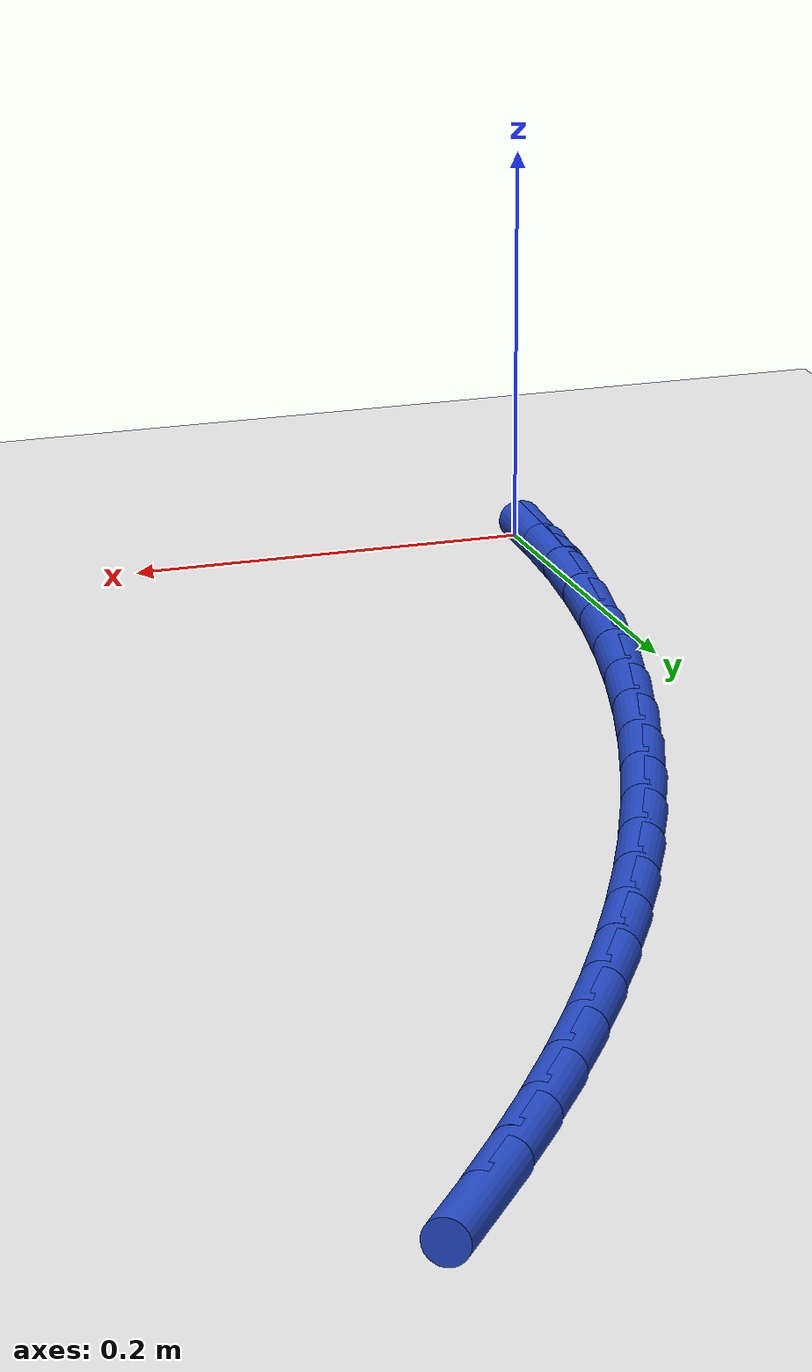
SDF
<sdf version="1.6">
 <world name="default">
  <model name="ground_plane">
   <static>1</static>
   <link name="link">
    <collision name="collision">
     <geometry><plane><normal>0 0 1</normal><size>100 100</size></plane></geometry>
     <surface><friction><ode><mu>100</mu><mu2>50</mu2></ode></friction></surface>
    </collision>
    <visual name="visual">
     <cast_shadows>0</cast_shadows>
     <geometry><plane><normal>0 0 1</normal><size>100 100</size></plane></geometry>
     <material>
      <script><uri>file://media/materials/scripts/gazebo.material</uri><name>Gazebo/WhiteGlow</name></script>
     </material>
    </visual>
   </link>
  </model>
  <model name="line">
   <link name="link_1">
    <pose>0.0018773794262160705 0.0441996178607598 0.01 0 1.57 1.4841949896388122</pose>
    <collision name="collision">
     <geometry><cylinder><radius>0.01</radius><length>0.08</length></cylinder></geometry>
    </collision>
    <visual name="visual">
     <material>
      <script><name>Gazebo/Blue</name><uri>file://media/materials/scripts/gazebo.material</uri></script>
     </material>
     <geometry><cylinder><radius>0.01</radius><length>0.08</length></cylinder></geometry>
    </visual>
   </link>
   <link name="link_2">
    <pose>0.00569221182953699 0.08813994188575232 0.01 0 1.57 1.442375402503813</pose>
    <collision name="collision">
     <geometry><cylinder><radius>0.01</radius><length>0.08</length></cylinder></geometry>
    </collision>
    <visual name="visual">
     <material>
      <script><name>Gazebo/Blue</name><uri>file://media/materials/scripts/gazebo.material</uri></script>
     </material>
     <geometry><cylinder><radius>0.01</radius><length>0.08</length></cylinder></geometry>
    </visual>
   </link>
   <link name="link_3">
    <pose>0.01132656917750486 0.13177262444632545 0.01 0 1.57 1.402879705712286</pose>
    <collision name="collision">
     <geometry><cylinder><radius>0.01</radius><length>0.08</length></cylinder></geometry>
    </collision>
    <visual name="visual">
     <material>
      <script><name>Gazebo/Blue</name><uri>file://media/materials/scripts/gazebo.material</uri></script>
     </material>
     <geometry><cylinder><radius>0.01</radius><length>0.08</length></cylinder></geometry>
    </visual>
   </link>
   <link name="link_4">
    <pose>0.01866252343766173 0.175049317913827 0.01 0 1.57 1.3656718448897593</pose>
    <collision name="collision">
     <geometry><cylinder><radius>0.01</radius><length>0.08</length></cylinder></geometry>
    </collision>
    <visual name="visual">
     <material>
      <script><name>Gazebo/Blue</name><uri>file://media/materials/scripts/gazebo.material</uri></script>
     </material>
     <geometry><cylinder><radius>0.01</radius><length>0.08</length></cylinder></geometry>
    </visual>
   </link>
   <link name="link_5">
    <pose>0.027582146577549666 0.21792167465960488 0.01 0 1.57 1.330694869672909</pose>
    <collision name="collision">
     <geometry><cylinder><radius>0.01</radius><length>0.08</length></cylinder></geometry>
    </collision>
    <visual name="visual">
     <material>
      <script><name>Gazebo/Blue</name><uri>file://media/materials/scripts/gazebo.material</uri></script>
     </material>
     <geometry><cylinder><radius>0.01</radius><length>0.08</length></cylinder></geometry>
    </visual>
   </link>
   <link name="link_6">
    <pose>0.03796751056471074 0.26034134705500694 0.01 0 1.57 1.2978770520964877</pose>
    <collision name="collision">
     <geometry><cylinder><radius>0.01</radius><length>0.08</length></cylinder></geometry>
    </collision>
    <visual name="visual">
     <material>
      <script><name>Gazebo/Blue</name><uri>file://media/materials/scripts/gazebo.material</uri></script>
     </material>
     <geometry><cylinder><radius>0.01</radius><length>0.08</length></cylinder></geometry>
    </visual>
   </link>
   <link name="link_7">
    <pose>0.049700687366686994 0.3022599874713811 0.01 0 1.57 1.2671371870385222</pose>
    <collision name="collision">
     <geometry><cylinder><radius>0.01</radius><length>0.08</length></cylinder></geometry>
    </collision>
    <visual name="visual">
     <material>
      <script><name>Gazebo/Blue</name><uri>file://media/materials/scripts/gazebo.material</uri></script>
     </material>
     <geometry><cylinder><radius>0.01</radius><length>0.08</length></cylinder></geometry>
    </visual>
   </link>
   <link name="link_8">
    <pose>0.06266374895102049 0.34362924828007513 0.01 0 1.57 1.238389022745369</pose>
    <collision name="collision">
     <geometry><cylinder><radius>0.01</radius><length>0.08</length></cylinder></geometry>
    </collision>
    <visual name="visual">
     <material>
      <script><name>Gazebo/Blue</name><uri>file://media/materials/scripts/gazebo.material</uri></script>
     </material>
     <geometry><cylinder><radius>0.01</radius><length>0.08</length></cylinder></geometry>
    </visual>
   </link>
   <link name="link_9">
    <pose>0.07673876898450409 0.3844007832674508 0.01 0 1.57 1.2111672025673526</pose>
    <collision name="collision">
     <geometry><cylinder><radius>0.01</radius><length>0.08</length></cylinder></geometry>
    </collision>
    <visual name="visual">
     <material>
      <script><name>Gazebo/Blue</name><uri>file://media/materials/scripts/gazebo.material</uri></script>
     </material>
     <geometry><cylinder><radius>0.01</radius><length>0.08</length></cylinder></geometry>
    </visual>
   </link>
   <link name="link_10">
    <pose>0.09183300477948912 0.4245472173480202 0.01 0 1.57 1.1841548187913944</pose>
    <collision name="collision">
     <geometry><cylinder><radius>0.01</radius><length>0.08</length></cylinder></geometry>
    </collision>
    <visual name="visual">
     <material>
      <script><name>Gazebo/Blue</name><uri>file://media/materials/scripts/gazebo.material</uri></script>
     </material>
     <geometry><cylinder><radius>0.01</radius><length>0.08</length></cylinder></geometry>
    </visual>
   </link>
   <link name="link_11">
    <pose>0.1079424291087033 0.4641150512889467 0.01 0 1.57 1.157207312297957</pose>
    <collision name="collision">
     <geometry><cylinder><radius>0.01</radius><length>0.08</length></cylinder></geometry>
    </collision>
    <visual name="visual">
     <material>
      <script><name>Gazebo/Blue</name><uri>file://media/materials/scripts/gazebo.material</uri></script>
     </material>
     <geometry><cylinder><radius>0.01</radius><length>0.08</length></cylinder></geometry>
    </visual>
   </link>
   <link name="link_12">
    <pose>0.12508253987730664 0.5031670449829216 0.01 0 1.57 1.1304850856862338</pose>
    <collision name="collision">
     <geometry><cylinder><radius>0.01</radius><length>0.08</length></cylinder></geometry>
    </collision>
    <visual name="visual">
     <material>
      <script><name>Gazebo/Blue</name><uri>file://media/materials/scripts/gazebo.material</uri></script>
     </material>
     <geometry><cylinder><radius>0.01</radius><length>0.08</length></cylinder></geometry>
    </visual>
   </link>
   <link name="link_13">
    <pose>0.14326883499045895 0.541765958322636 0.01 0 1.57 1.104144897239934</pose>
    <collision name="collision">
     <geometry><cylinder><radius>0.01</radius><length>0.08</length></cylinder></geometry>
    </collision>
    <visual name="visual">
     <material>
      <script><name>Gazebo/Blue</name><uri>file://media/materials/scripts/gazebo.material</uri></script>
     </material>
     <geometry><cylinder><radius>0.01</radius><length>0.08</length></cylinder></geometry>
    </visual>
   </link>
   <link name="link_14">
    <pose>0.16251681235332044 0.5799745512007817 0.01 0 1.57 1.0783361836781882</pose>
    <collision name="collision">
     <geometry><cylinder><radius>0.01</radius><length>0.08</length></cylinder></geometry>
    </collision>
    <visual name="visual">
     <material>
      <script><name>Gazebo/Blue</name><uri>file://media/materials/scripts/gazebo.material</uri></script>
     </material>
     <geometry><cylinder><radius>0.01</radius><length>0.08</length></cylinder></geometry>
    </visual>
   </link>
   <link name="link_15">
    <pose>0.18284196987105086 0.6178555835100495 0.01 0 1.57 1.0531977779536694</pose>
    <collision name="collision">
     <geometry><cylinder><radius>0.01</radius><length>0.08</length></cylinder></geometry>
    </collision>
    <visual name="visual">
     <material>
      <script><name>Gazebo/Blue</name><uri>file://media/materials/scripts/gazebo.material</uri></script>
     </material>
     <geometry><cylinder><radius>0.01</radius><length>0.08</length></cylinder></geometry>
    </visual>
   </link>
   <link name="link_16">
    <pose>0.2042598054488104 0.6554718151431315 0.01 0 1.57 1.0288551834632929</pose>
    <collision name="collision">
     <geometry><cylinder><radius>0.01</radius><length>0.08</length></cylinder></geometry>
    </collision>
    <visual name="visual">
     <material>
      <script><name>Gazebo/Blue</name><uri>file://media/materials/scripts/gazebo.material</uri></script>
     </material>
     <geometry><cylinder><radius>0.01</radius><length>0.08</length></cylinder></geometry>
    </visual>
   </link>
   <link name="link_17">
    <pose>0.22678581699175887 0.6928860059927187 0.01 0 1.57 1.005418512661279</pose>
    <collision name="collision">
     <geometry><cylinder><radius>0.01</radius><length>0.08</length></cylinder></geometry>
    </collision>
    <visual name="visual">
     <material>
      <script><name>Gazebo/Blue</name><uri>file://media/materials/scripts/gazebo.material</uri></script>
     </material>
     <geometry><cylinder><radius>0.01</radius><length>0.08</length></cylinder></geometry>
    </visual>
   </link>
   <link name="link_18">
    <pose>0.25043550240505624 0.7301609159515021 0.01 0 1.57 0.9829811391099385</pose>
    <collision name="collision">
     <geometry><cylinder><radius>0.01</radius><length>0.08</length></cylinder></geometry>
    </collision>
    <visual name="visual">
     <material>
      <script><name>Gazebo/Blue</name><uri>file://media/materials/scripts/gazebo.material</uri></script>
     </material>
     <geometry><cylinder><radius>0.01</radius><length>0.08</length></cylinder></geometry>
    </visual>
   </link>
   <link name="link_19">
    <pose>0.2752243595938626 0.7673593049121737 0.01 0 1.57 0.9616190553494399</pose>
    <collision name="collision">
     <geometry><cylinder><radius>0.01</radius><length>0.08</length></cylinder></geometry>
    </collision>
    <visual name="visual">
     <material>
      <script><name>Gazebo/Blue</name><uri>file://media/materials/scripts/gazebo.material</uri></script>
     </material>
     <geometry><cylinder><radius>0.01</radius><length>0.08</length></cylinder></geometry>
    </visual>
   </link>
   <link name="link_20">
    <pose>0.3011678864633377 0.8045439327674245 0.01 0 1.57 0.9413908810179638</pose>
    <collision name="collision">
     <geometry><cylinder><radius>0.01</radius><length>0.08</length></cylinder></geometry>
    </collision>
    <visual name="visual">
     <material>
      <script><name>Gazebo/Blue</name><uri>file://media/materials/scripts/gazebo.material</uri></script>
     </material>
     <geometry><cylinder><radius>0.01</radius><length>0.08</length></cylinder></geometry>
    </visual>
   </link>
   <link name="link_161">
    <pose>0.001895019638924543 0.044176068357749974 0.01 0 1.57 1.5279256364566962</pose>
    <collision name="collision">
     <geometry><cylinder><radius>0.01</radius><length>0.08</length></cylinder></geometry>
    </collision>
    <visual name="visual">
     <material>
      <script><name>Gazebo/Blue</name><uri>file://media/materials/scripts/gazebo.material</uri></script>
     </material>
     <geometry><cylinder><radius>0.01</radius><length>0.08</length></cylinder></geometry>
    </visual>
   </link>
  </model>
 </world>
</sdf>
